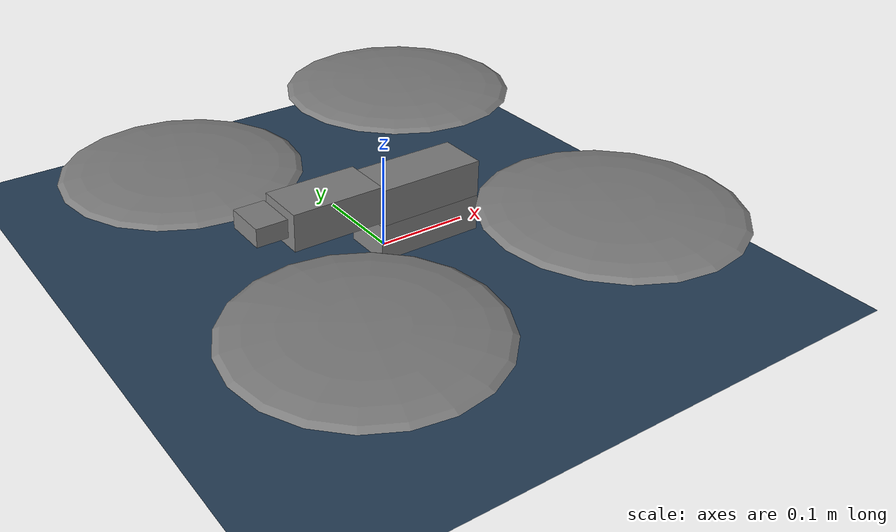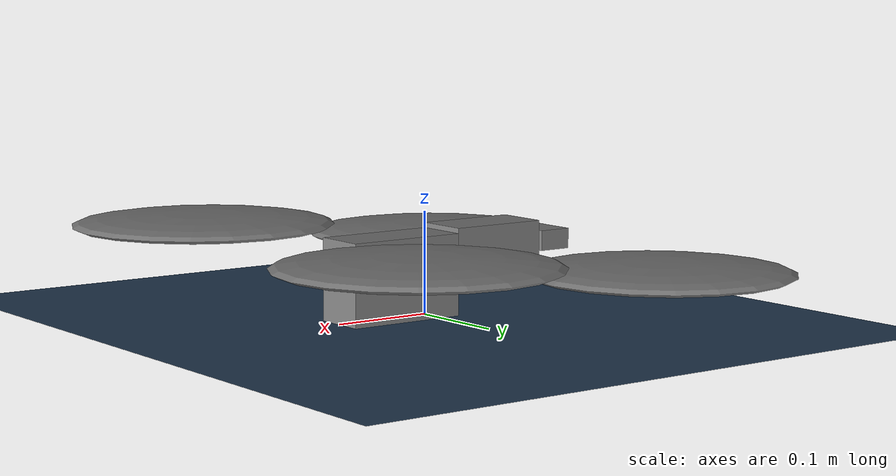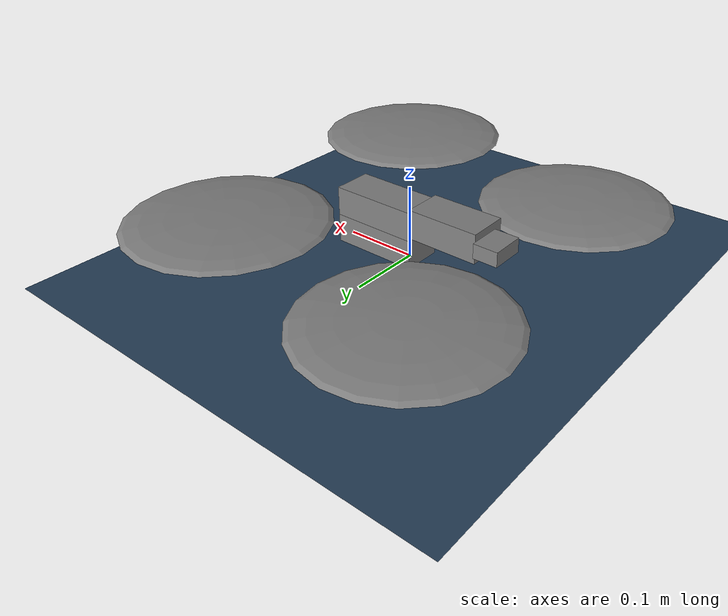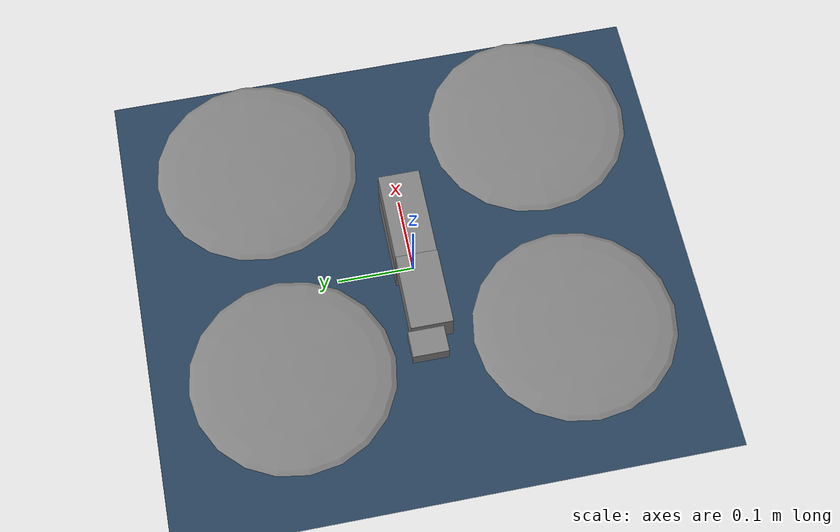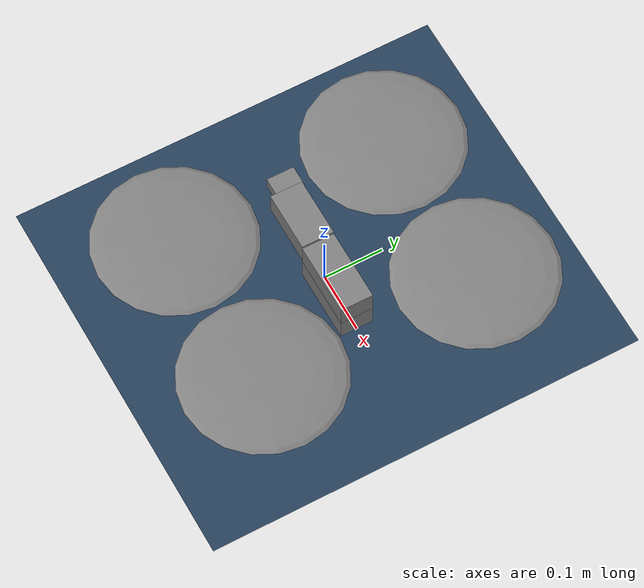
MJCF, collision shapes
<mujoco model="skydio_x2_point_mass">
  <compiler autolimits="true" assetdir="assets"/>

  <option timestep="0.01"/>

  <statistic center="0 0 0.5" extent="3" meansize=".05"/>

  <visual>
    <headlight diffuse="0.6 0.6 0.6" ambient="0.3 0.3 0.3" specular="0 0 0"/>
    <rgba haze="0.15 0.25 0.35 1"/>
    <global azimuth="-20" elevation="-20" offwidth="1024" offheight="1024"/>
  </visual>

  <default>
    <default class="x2">
      <geom mass="0"/>
      <mesh scale="0.01 0.01 0.01"/>
      <default class="visual">
        <geom group="2" type="mesh" contype="0" conaffinity="0"/>
      </default>
      <default class="collision">
        <geom group="3" type="box"/>
        <default class="rotor">
          <geom type="ellipsoid" size=".13 .13 .01"/>
        </default>
      </default>
      <site group="5"/>
    </default>
  </default>

  <asset>
    <texture type="2d" file="X2_lowpoly_texture_SpinningProps_1024.png"/>
    <material name="phong3SG" texture="X2_lowpoly_texture_SpinningProps_1024"/>
    <mesh class="x2" file="X2_lowpoly.obj"/>
    <texture type="skybox" builtin="gradient" rgb1="0.3 0.5 0.7" rgb2="0 0 0" width="512" height="3072"/>
    <texture type="2d" name="groundplane" builtin="checker" mark="edge" rgb1="0.2 0.3 0.4" rgb2="0.1 0.2 0.3"
      markrgb="0.8 0.8 0.8" width="300" height="300"/>
    <material name="groundplane" texture="groundplane" texuniform="true" texrepeat="5 5"/>
  </asset>

  <worldbody>
    <light pos="0 0 3" dir="0 0 -1" directional="true"/>
    <geom name="floor" size="0 0 0.05" type="plane" material="groundplane"/>
    <camera name="overview" pos="0 -7 6" xyaxes="1 0 0 0 0.6 0.8"/>

    <body name="x2" gravcomp="1" childclass="x2">
      <joint name="slide_x" type="slide" axis="1 0 0"/>
      <joint name="slide_y" type="slide" axis="0 1 0"/>
      <joint name="slide_z" type="slide" axis="0 0 1"/>
      <joint name="yaw" type="hinge" axis="0 0 1"/>

      <geom material="phong3SG" mesh="X2_lowpoly" class="visual" quat="0 0 1 1"/>
      <site name="imu" pos="0 0 .02"/>

      <geom class="collision" size=".06 .027 .02" pos=".04 0 .02"/>
      <geom class="collision" size=".06 .027 .02" pos=".04 0 .06"/>
      <geom class="collision" size=".05 .027 .02" pos="-.07 0 .065"/>
      <geom class="collision" size=".023 .017 .01" pos="-.137 .008 .065" quat="1 0 0 1"/>
      <geom name="rotor1" class="rotor" pos="-.14 -.18 .05" mass=".25"/>
      <geom name="rotor2" class="rotor" pos="-.14 .18 .05" mass=".25"/>
      <geom name="rotor3" class="rotor" pos=".14 .18 .08" mass=".25"/>
      <geom name="rotor4" class="rotor" pos=".14 -.18 .08" mass=".25"/>

      <camera name="chase" mode="trackcom" pos="0 -2.5 1.5" xyaxes="1 0 0 0 0.5 0.87"/>
      <!-- Onboard camera fixed at the nose, looking straight ahead (level). -->
      <camera name="onboard" pos=".2 0 .02" xyaxes="0 -1 0 0 0 1" fovy="70"/>
    </body>
  </worldbody>

  <actuator>
    <velocity name="vx" joint="slide_x" kv="5"/>
    <velocity name="vy" joint="slide_y" kv="5"/>
    <velocity name="vz" joint="slide_z" kv="5"/>
    <velocity name="yaw_rate" joint="yaw" kv="0.3"/>
  </actuator>
</mujoco>
